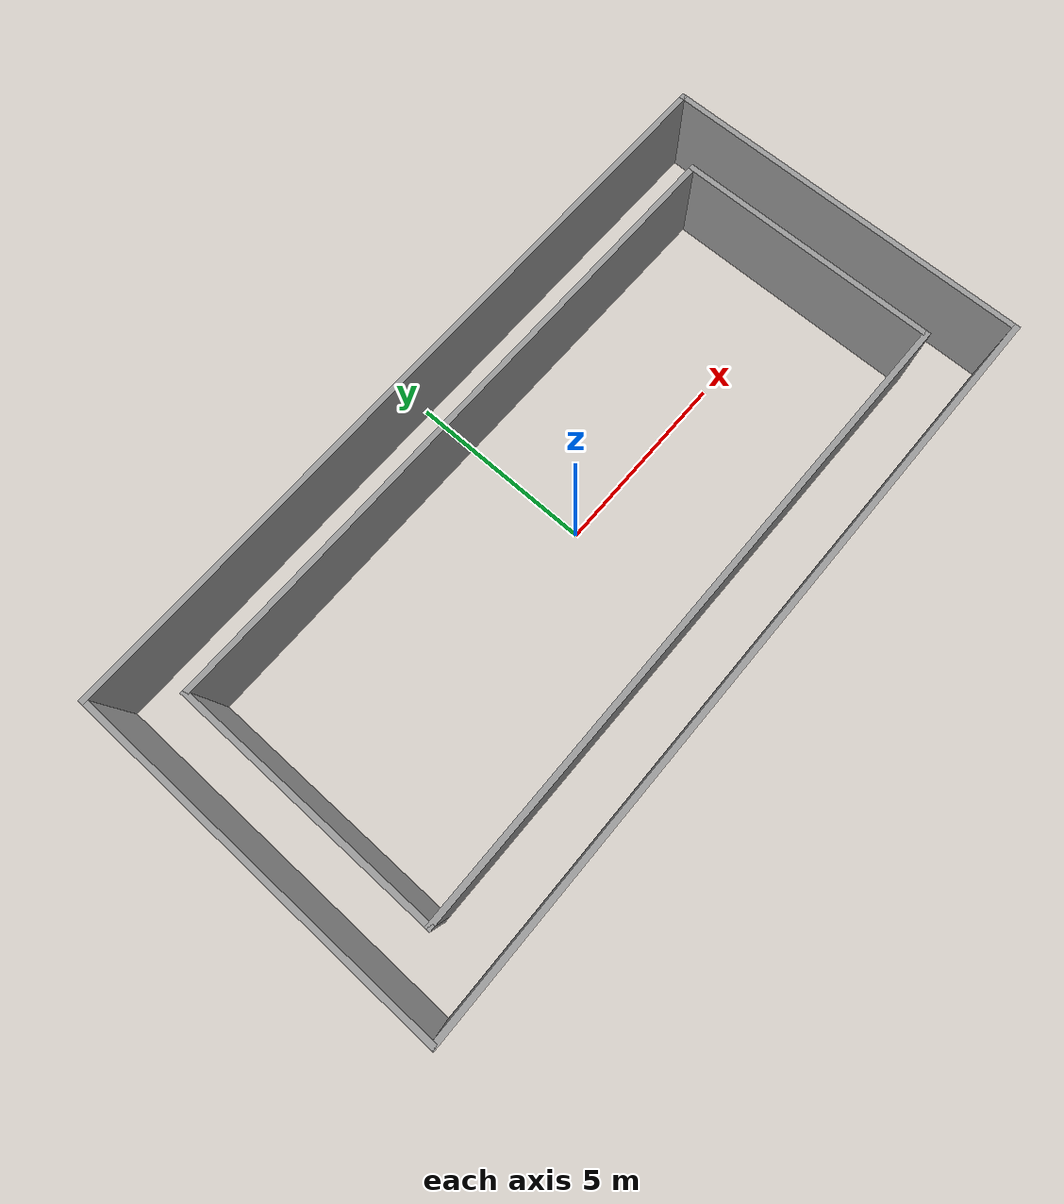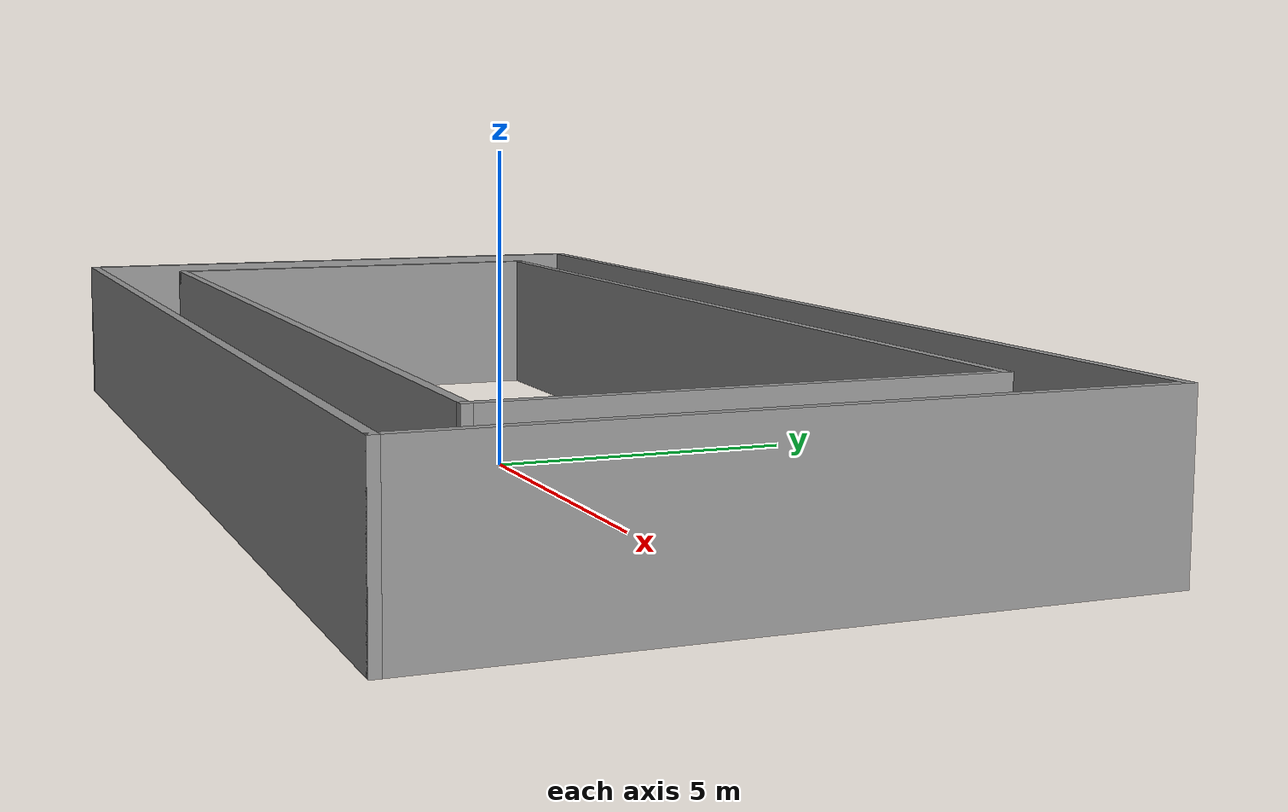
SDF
<?xml version='1.0'?>
<sdf version='1.7'>
  <model name='turtlebot3_drl_world16'>
    <pose>0 0 0 0 -0 0</pose>
    <link name='Wall_0'>
      <collision name='Wall_0_Collision'>
        <geometry>
          <box>
            <size>10.15 0.15 2.5</size>
          </box>
        </geometry>
        <pose>0 0 1.25 0 -0 0</pose>
      </collision>
      <visual name='Wall_0_Visual'>
        <pose>0 0 1.25 0 -0 0</pose>
        <geometry>
          <box>
            <size>10.15 0.15 2.5</size>
          </box>
        </geometry>
        <material>
          <script>
            <uri>file://media/materials/scripts/gazebo.material</uri>
            <name>Gazebo/Grey</name>
          </script>
          <ambient>1 1 1 1</ambient>
        </material>
        <meta>
          <layer>0</layer>
        </meta>
      </visual>
      <pose>-10 0 0 0 -0 1.5708</pose>
    </link>
    <link name='Wall_11'>
      <collision name='Wall_11_Collision'>
        <geometry>
          <box>
            <size>17.15 0.15 2.5</size>
          </box>
        </geometry>
        <pose>0 0 1.25 0 -0 0</pose>
      </collision>
      <visual name='Wall_11_Visual'>
        <pose>0 0 1.25 0 -0 0</pose>
        <geometry>
          <box>
            <size>17.15 0.15 2.5</size>
          </box>
        </geometry>
        <material>
          <script>
            <uri>file://media/materials/scripts/gazebo.material</uri>
            <name>Gazebo/Grey</name>
          </script>
          <ambient>1 1 1 1</ambient>
        </material>
        <meta>
          <layer>0</layer>
        </meta>
      </visual>
      <pose>0 3.5 0 0 -0 0</pose>
    </link>
    <link name='Wall_13'>
      <collision name='Wall_13_Collision'>
        <geometry>
          <box>
            <size>7.15 0.15 2.5</size>
          </box>
        </geometry>
        <pose>0 0 1.25 0 -0 0</pose>
      </collision>
      <visual name='Wall_13_Visual'>
        <pose>0 0 1.25 0 -0 0</pose>
        <geometry>
          <box>
            <size>7.15 0.15 2.5</size>
          </box>
        </geometry>
        <material>
          <script>
            <uri>file://media/materials/scripts/gazebo.material</uri>
            <name>Gazebo/Grey</name>
          </script>
          <ambient>1 1 1 1</ambient>
        </material>
        <meta>
          <layer>0</layer>
        </meta>
      </visual>
      <pose>8.5 0 0 0 -0 -1.5708</pose>
    </link>
    <link name='Wall_15'>
      <collision name='Wall_15_Collision'>
        <geometry>
          <box>
            <size>17.15 0.15 2.5</size>
          </box>
        </geometry>
        <pose>0 0 1.25 0 -0 0</pose>
      </collision>
      <visual name='Wall_15_Visual'>
        <pose>0 0 1.25 0 -0 0</pose>
        <geometry>
          <box>
            <size>17.15 0.15 2.5</size>
          </box>
        </geometry>
        <material>
          <script>
            <uri>file://media/materials/scripts/gazebo.material</uri>
            <name>Gazebo/Grey</name>
          </script>
          <ambient>1 1 1 1</ambient>
        </material>
        <meta>
          <layer>0</layer>
        </meta>
      </visual>
      <pose>0 -3.5 0 0 -0 0</pose>
    </link>
    <link name='Wall_3'>
      <collision name='Wall_3_Collision'>
        <geometry>
          <box>
            <size>20.15 0.15 2.5</size>
          </box>
        </geometry>
        <pose>0 0 1.25 0 -0 0</pose>
      </collision>
      <visual name='Wall_3_Visual'>
        <pose>0 0 1.25 0 -0 0</pose>
        <geometry>
          <box>
            <size>20.15 0.15 2.5</size>
          </box>
        </geometry>
        <material>
          <script>
            <uri>file://media/materials/scripts/gazebo.material</uri>
            <name>Gazebo/Grey</name>
          </script>
          <ambient>1 1 1 1</ambient>
        </material>
        <meta>
          <layer>0</layer>
        </meta>
      </visual>
      <pose>0 5 0 0 -0 0</pose>
    </link>
    <link name='Wall_5'>
      <collision name='Wall_5_Collision'>
        <geometry>
          <box>
            <size>10.15 0.15 2.5</size>
          </box>
        </geometry>
        <pose>0 0 1.25 0 -0 0</pose>
      </collision>
      <visual name='Wall_5_Visual'>
        <pose>0 0 1.25 0 -0 0</pose>
        <geometry>
          <box>
            <size>10.15 0.15 2.5</size>
          </box>
        </geometry>
        <material>
          <script>
            <uri>file://media/materials/scripts/gazebo.material</uri>
            <name>Gazebo/Grey</name>
          </script>
          <ambient>1 1 1 1</ambient>
        </material>
        <meta>
          <layer>0</layer>
        </meta>
      </visual>
      <pose>10 0 0 0 -0 -1.5708</pose>
    </link>
    <link name='Wall_7'>
      <collision name='Wall_7_Collision'>
        <geometry>
          <box>
            <size>20.15 0.15 2.5</size>
          </box>
        </geometry>
        <pose>0 0 1.25 0 -0 0</pose>
      </collision>
      <visual name='Wall_7_Visual'>
        <pose>0 0 1.25 0 -0 0</pose>
        <geometry>
          <box>
            <size>20.15 0.15 2.5</size>
          </box>
        </geometry>
        <material>
          <script>
            <uri>file://media/materials/scripts/gazebo.material</uri>
            <name>Gazebo/Grey</name>
          </script>
          <ambient>1 1 1 1</ambient>
        </material>
        <meta>
          <layer>0</layer>
        </meta>
      </visual>
      <pose>0 -5 0 0 -0 0</pose>
    </link>
    <link name='Wall_9'>
      <collision name='Wall_9_Collision'>
        <geometry>
          <box>
            <size>7.15 0.15 2.5</size>
          </box>
        </geometry>
        <pose>0 0 1.25 0 -0 0</pose>
      </collision>
      <visual name='Wall_9_Visual'>
        <pose>0 0 1.25 0 -0 0</pose>
        <geometry>
          <box>
            <size>7.15 0.15 2.5</size>
          </box>
        </geometry>
        <material>
          <script>
            <uri>file://media/materials/scripts/gazebo.material</uri>
            <name>Gazebo/Grey</name>
          </script>
          <ambient>1 1 1 1</ambient>
        </material>
        <meta>
          <layer>0</layer>
        </meta>
      </visual>
      <pose>-8.5 0 0 0 -0 -1.5708</pose>
    </link>
    <static>1</static>
  </model>
</sdf>
